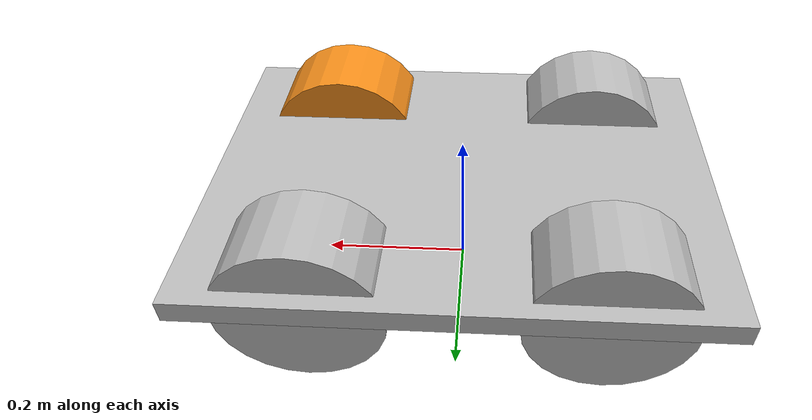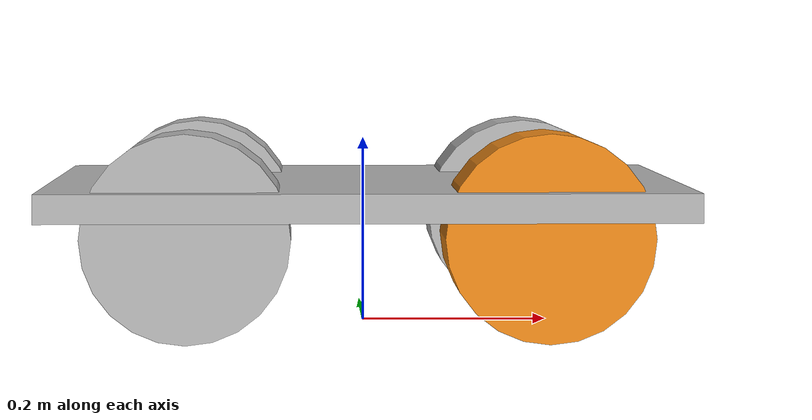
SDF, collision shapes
<?xml version="1.0" ?>
<sdf version="1.3">
    <model name="osrobot">
        <link name="chassis">
            <pose>0 0 0.140 0 0 0</pose>
            <collision name="collision">
                <geometry>
                    <box>
                        <size>0.671 0.496 0.03</size>
                    </box>
                </geometry>
            </collision>
            <visual name="visual1">
                <cast_shadows>0</cast_shadows>
                <pose>0 0 0 0 0 -1.5707</pose>
                <geometry>
                    <mesh>
                        <uri>model://osrobot/meshes/chassis.dae</uri>
                    </mesh>
                </geometry>
                <plugin name="visual" filename="libosr_visual.so">
                    <test>1</test>
                </plugin>
            </visual>
            <sensor name="IR1" type="ray">
                <pose>0.336 0.0 0.15 0.000000 -0.000000 0.000000</pose>
                <ray>
                    <scan>
                        <horizontal>
                            <samples>18</samples>
                            <resolution>1.000000</resolution>
                            <min_angle>-0.79</min_angle>
                            <max_angle>0.79</max_angle>
                        </horizontal>
                    </scan>
                    <range>
                        <min>0.050000</min>
                        <max>3.00000</max>
                        <resolution>0.360000</resolution>
                    </range>
                </ray>
                <always_on>true</always_on>
                <update_rate>10.000000</update_rate>
                <visualize>true</visualize>
            </sensor>
        </link>
        <link name="front_left_wheel">
            <pose>0.185 0.17 0.107 0 1.5707 1.5707</pose>
            <collision name="collision">
                <geometry>
                    <cylinder>
                        <radius>0.107</radius>
                        <length>0.112</length>
                    </cylinder>
                </geometry>
            </collision>
            <visual name="visual">
                <pose>0 0 0 0 -1.5707 -1.5707</pose>
                <cast_shadows>0</cast_shadows>
                <geometry>
                    <mesh>
                        <uri>model://osrobot/meshes/wheel.dae</uri>
                    </mesh>
                </geometry>
            </visual>
        </link>
        <link name="front_right_wheel">
            <pose>0.185 -0.17 0.107 0 1.5707 1.5707</pose>
            <collision name="collision">
                <geometry>
                    <cylinder>
                        <radius>0.107</radius>
                        <length>0.112</length>
                    </cylinder>
                </geometry>
            </collision>
            <visual name="visual">
                <pose>0 0 0 0 1.5707 0</pose>
                <cast_shadows>0</cast_shadows>
                <geometry>
                    <mesh>
                        <uri>model://osrobot/meshes/wheel.dae</uri>
                    </mesh>
                </geometry>
                <material>
                    <script>
                        <uri>model://osrobot/materials/scripts/osrobot.material</uri>
                        <name>osrobot/Orange</name>
                    </script>
                </material>

            </visual>
        </link>
        <link name="back_right_wheel">
            <pose>-0.185 -0.17 0.107 0 1.5707 1.5707</pose>
            <collision name="collision">
                <geometry>
                    <cylinder>
                        <radius>0.107</radius>
                        <length>0.112</length>
                    </cylinder>
                </geometry>
            </collision>
            <visual name="visual">
                <pose>0 0 0 0 -1.5707 -1.5707</pose>
                <cast_shadows>0</cast_shadows>
                <geometry>
                    <mesh>
                        <uri>model://osrobot/meshes/wheel.dae</uri>
                    </mesh>
                </geometry>7
            </visual>
        </link>
        <link name="back_left_wheel">
            <pose>-0.185 0.17 0.107 0 1.5707 1.5707</pose>
            <collision name="collision">
                <geometry>
                    <cylinder>
                        <radius>0.107</radius>
                        <length>0.112</length>
                    </cylinder>
                </geometry>
            </collision>
            <visual name="visual">
                <pose>0 0 0 0 -1.5707 -1.5707</pose>
                <cast_shadows>0</cast_shadows>
                <geometry>
                    <mesh>
                        <uri>model://osrobot/meshes/wheel.dae</uri>
                    </mesh>
                </geometry>
            </visual>
        </link>
        <joint type="revolute2" name="front_left_joint">
            <parent>chassis</parent>
            <child>front_left_wheel</child>
            <axis>
                <xyz>0 0 1</xyz>
                <limit>
                    <lower>0</lower>
                    <upper>0</upper>
                </limit>
            </axis>
            <axis2>
                <xyz>0 1 0</xyz>
            </axis2>
            <physics>
                <ode>
                    <limit>
                        <cfm>0.0</cfm>
                        <erp>0.9</erp>
                    </limit>
                </ode>
            </physics>
        </joint>
        <joint type="revolute2" name="front_right_joint">
            <parent>chassis</parent>
            <child>front_right_wheel</child>
            <axis>
                <xyz>0 0 1</xyz>
                <limit>
                    <lower>0</lower>
                    <upper>0</upper>
                </limit>
            </axis>
            <axis2>
                <xyz>0 1 0</xyz>
            </axis2>
            <physics>
                <ode>
                    <limit>
                        <cfm>0.0</cfm>
                        <erp>0.9</erp>
                    </limit>
                </ode>
            </physics>
        </joint>
        <joint type="revolute2" name="back_right_joint">
            <parent>chassis</parent>
            <child>back_right_wheel</child>
            <axis>
                <xyz>0 0 1</xyz>
                <limit>
                    <lower>0</lower>
                    <upper>0</upper>
                </limit>
            </axis>
            <axis2>
                <xyz>0 1 0</xyz>
            </axis2>
            <physics>
                <ode>
                    <limit>
                        <cfm>0.0</cfm>
                        <erp>0.9</erp>
                    </limit>
                </ode>
            </physics>
        </joint>
        <joint type="revolute2" name="back_left_joint">
            <parent>chassis</parent>
            <child>back_left_wheel</child>
            <axis>
                <xyz>0 0 1</xyz>
                <limit>
                    <lower>0</lower>
                    <upper>0</upper>
                </limit>
            </axis>
            <axis2>
                <xyz>0 1 0</xyz>
            </axis2>
            <physics>
                <ode>
                    <limit>
                        <cfm>0.0</cfm>
                        <erp>0.9</erp>
                    </limit>
                </ode>
            </physics>
        </joint>
        <plugin name="osrobot" filename="libosr_motion.so">
            <front_left>front_left_joint</front_left>
            <front_right>front_right_joint</front_right>
            <back_left>back_left_joint</back_left>
            <back_right>back_right_joint</back_right>
            <front_power>10</front_power>
            <rear_power>10</rear_power>
        </plugin>
    </model>
</sdf>
